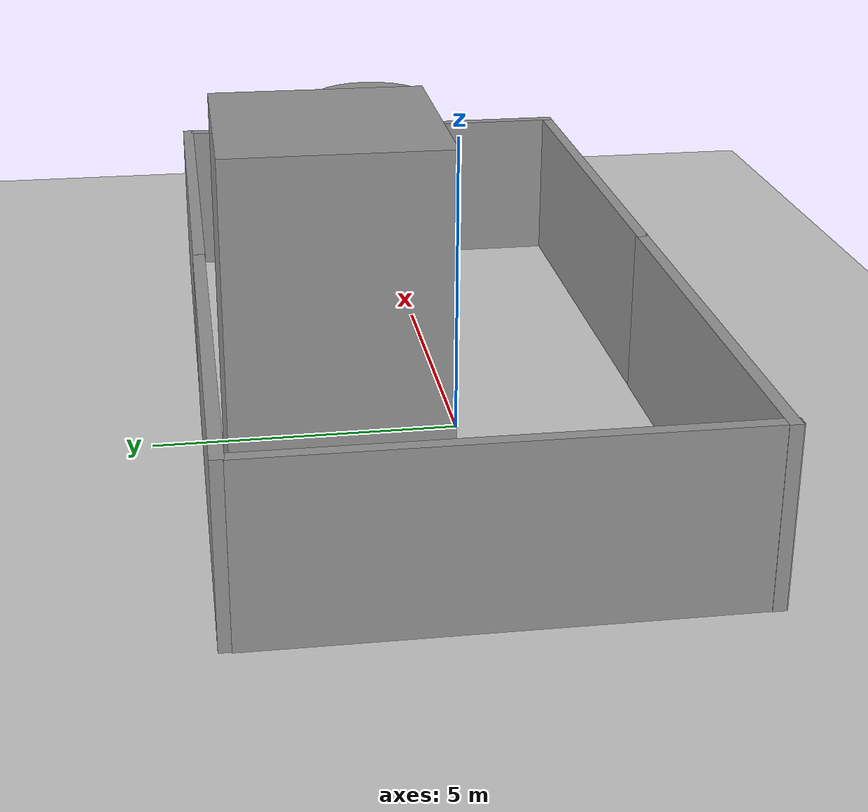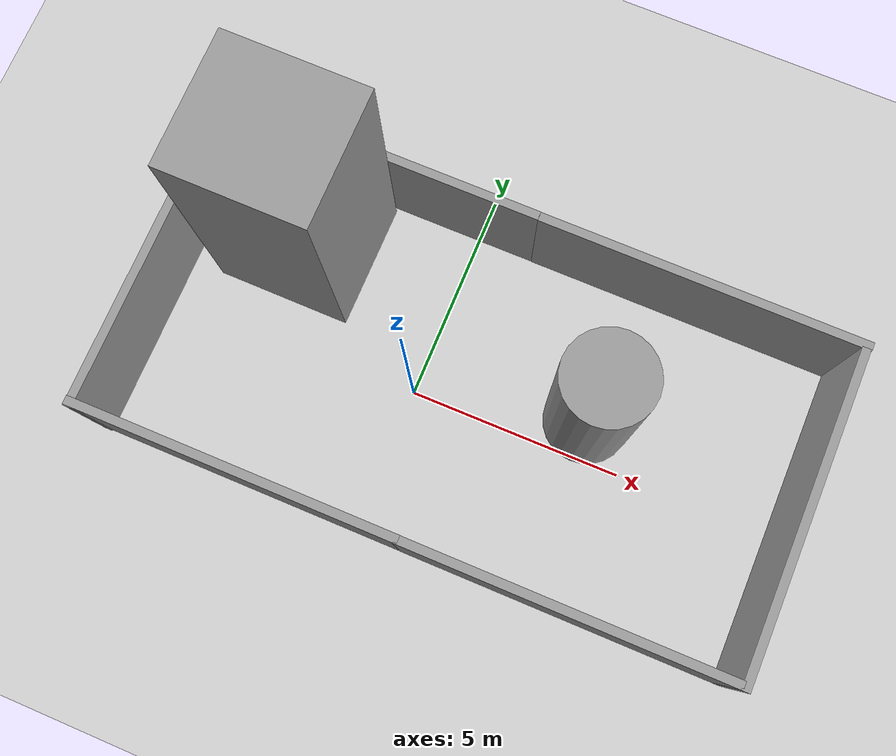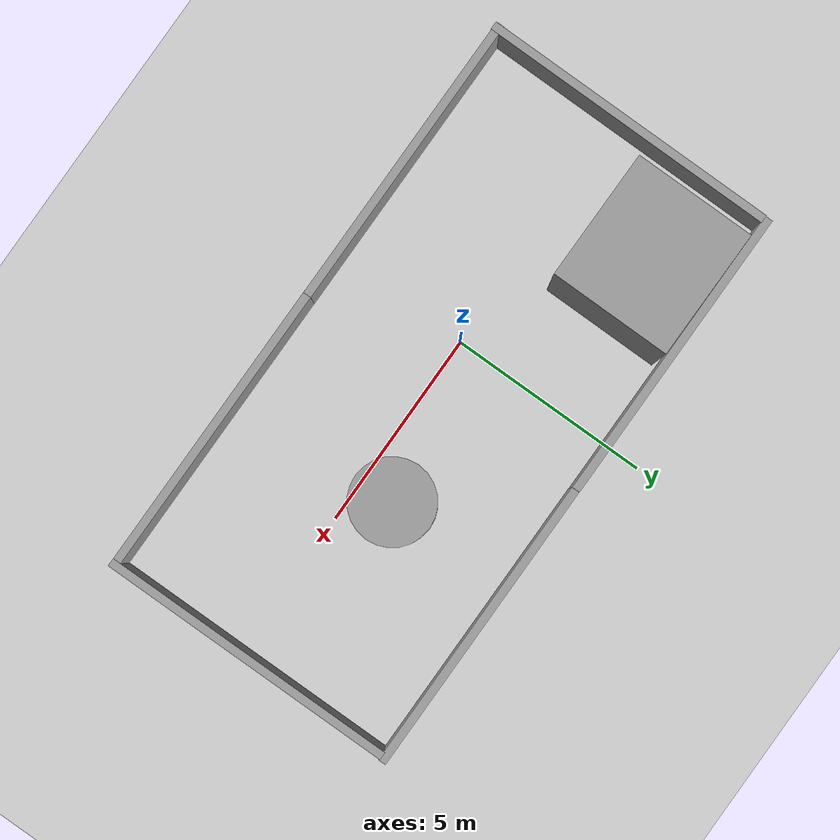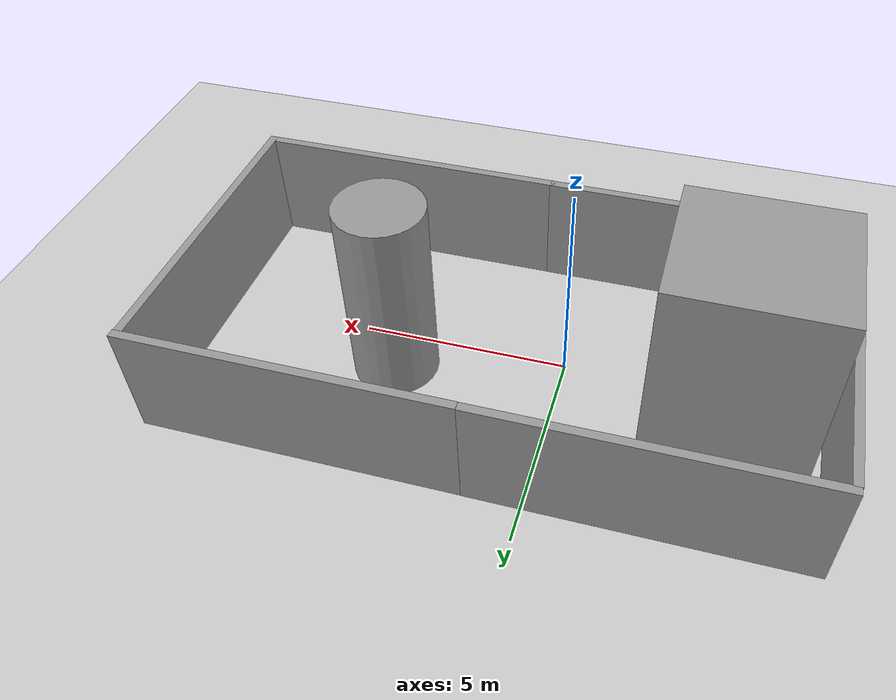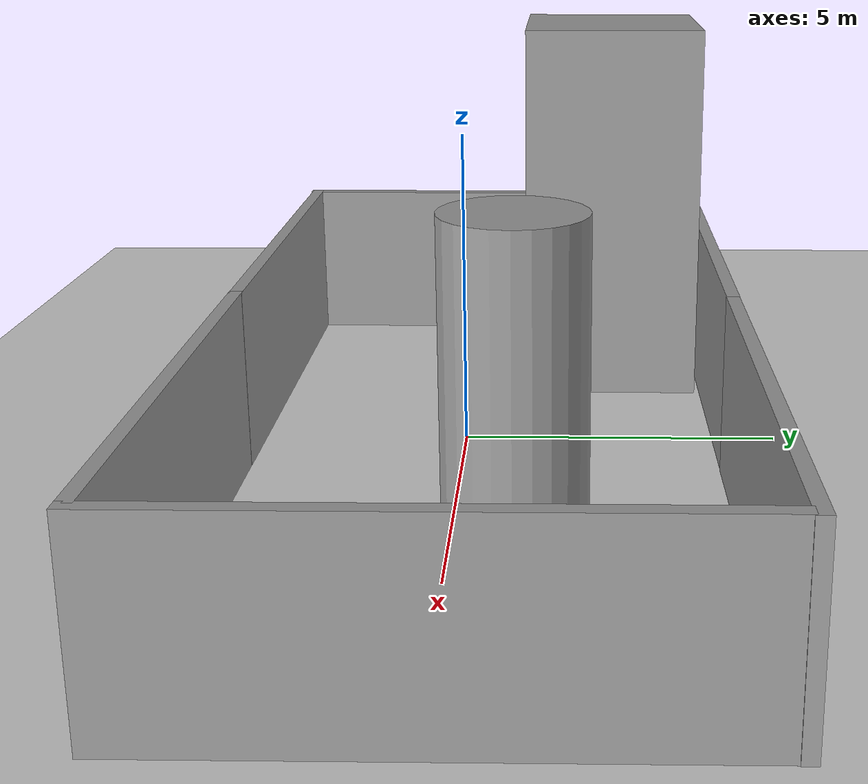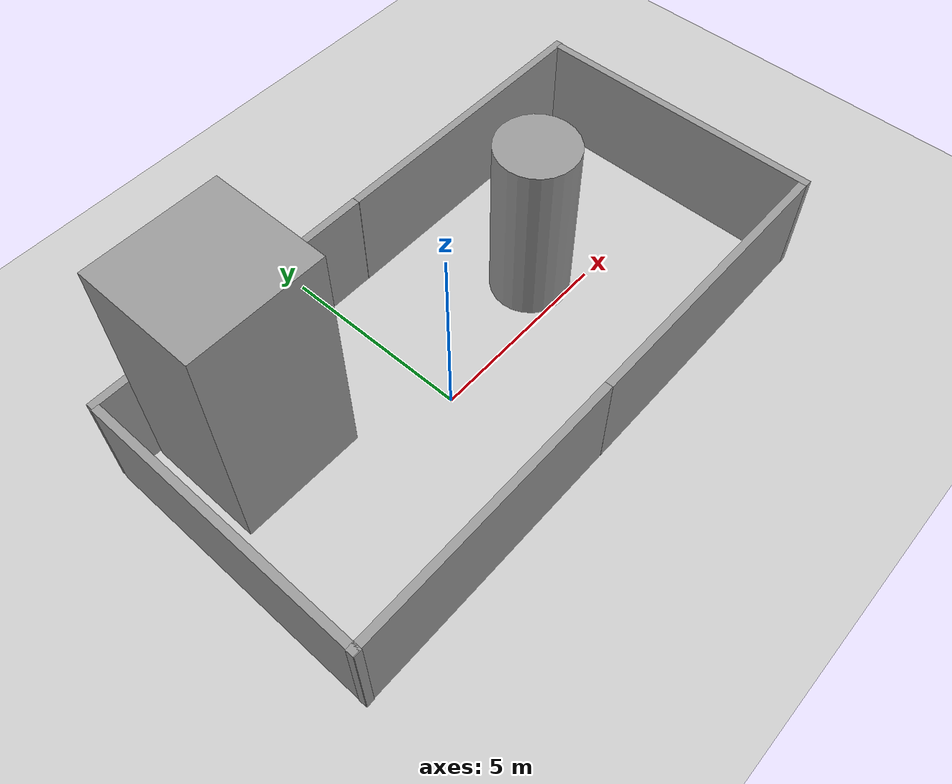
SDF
<sdf version="1.6">
 <world name="GrannyAnnie">
  <light name="sun" type="directional">
   <pose>0 0 10 0 -0 0</pose>
   <diffuse>0.8 0.8 0.8 1</diffuse>
   <specular>0.2 0.2 0.2 1</specular>
   <attenuation>
    <range>1000</range>
    <constant>0.9</constant>
    <linear>0.01</linear>
    <quadratic>0.001</quadratic>
   </attenuation>
   <direction>-0.5 0.1 -0.9</direction>
  </light>
  <model name="ground_plane">
   <static>1</static>
   <link name="link">
    <collision name="collision">
     <geometry><plane><normal>0 0 1</normal><size>100 100</size></plane></geometry>
     <surface><friction><ode><mu>100</mu><mu2>50</mu2></ode></friction></surface>
    </collision>
    <visual name="visual">
     <cast_shadows>0</cast_shadows>
     <geometry><plane><normal>0 0 1</normal><size>100 100</size></plane></geometry>
     <material>
      <script><uri>file://media/materials/scripts/gazebo.material</uri><name>Gazebo/Grey</name></script>
     </material>
    </visual>
    <velocity_decay><linear>0</linear><angular>0</angular></velocity_decay>
   </link>
  </model>
  <physics name="default_physics" default="0" type="ode">
   <max_step_size>0.01</max_step_size>
   <real_time_factor>1</real_time_factor>
   <real_time_update_rate>100</real_time_update_rate>
  </physics>
  <scene><ambient>0.4 0.4 0.4 1</ambient><background>0.7 0.7 0.7 1</background><shadows>1</shadows></scene>
  <spherical_coordinates>
   <surface_model>EARTH_WGS84</surface_model>
   <latitude_deg>0</latitude_deg>
   <longitude_deg>0</longitude_deg>
   <elevation>0</elevation>
   <heading_deg>0</heading_deg>
  </spherical_coordinates>
  <model name="grey_wall_0">
   <static>1</static>
   <link name="link">
    <pose>0 0 1.4 0 -0 0</pose>
    <collision name="collision"><geometry><box><size>7.5 0.2 2.8</size></box></geometry></collision>
    <visual name="visual">
     <cast_shadows>0</cast_shadows>
     <geometry><box><size>7.5 0.2 2.8</size></box></geometry>
     <material>
      <script>
       <uri>model://grey_wall/materials/scripts</uri>
       <uri>model://grey_wall/materials/textures</uri>
       <name>vrc/grey_wall</name>
      </script>
     </material>
    </visual>
    <velocity_decay><linear>0</linear><angular>0</angular></velocity_decay>
   </link>
   <pose>-6.1361 0.261075 0 0 0 -1.57522</pose>
  </model>
  <model name="grey_wall_1">
   <static>1</static>
   <link name="link">
    <pose>0 0 1.4 0 -0 0</pose>
    <collision name="collision"><geometry><box><size>7.5 0.2 2.8</size></box></geometry></collision>
    <visual name="visual">
     <cast_shadows>0</cast_shadows>
     <geometry><box><size>7.5 0.2 2.8</size></box></geometry>
     <material>
      <script>
       <uri>model://grey_wall/materials/scripts</uri>
       <uri>model://grey_wall/materials/textures</uri>
       <name>vrc/grey_wall</name>
      </script>
     </material>
    </visual>
    <velocity_decay><linear>0</linear><angular>0</angular></velocity_decay>
   </link>
   <pose>-2.44831 4.09492 0 0 -0 0</pose>
  </model>
  <model name="grey_wall_2">
   <static>1</static>
   <link name="link">
    <pose>0 0 1.4 0 -0 0</pose>
    <collision name="collision"><geometry><box><size>7.5 0.2 2.8</size></box></geometry></collision>
    <visual name="visual">
     <cast_shadows>0</cast_shadows>
     <geometry><box><size>7.5 0.2 2.8</size></box></geometry>
     <material>
      <script>
       <uri>model://grey_wall/materials/scripts</uri>
       <uri>model://grey_wall/materials/textures</uri>
       <name>vrc/grey_wall</name>
      </script>
     </material>
    </visual>
    <velocity_decay><linear>0</linear><angular>0</angular></velocity_decay>
   </link>
   <pose>-2.51059 -3.37113 0 0 -0 0</pose>
  </model>
  <model name="grey_wall_4">
   <static>1</static>
   <link name="link">
    <pose>0 0 1.4 0 -0 0</pose>
    <collision name="collision"><geometry><box><size>7.5 0.2 2.8</size></box></geometry></collision>
    <visual name="visual">
     <cast_shadows>0</cast_shadows>
     <geometry><box><size>7.5 0.2 2.8</size></box></geometry>
     <material>
      <script>
       <uri>model://grey_wall/materials/scripts</uri>
       <uri>model://grey_wall/materials/textures</uri>
       <name>vrc/grey_wall</name>
      </script>
     </material>
    </visual>
    <velocity_decay><linear>0</linear><angular>0</angular></velocity_decay>
   </link>
   <pose>8.68578 0.273967 0 0 0 -1.5708</pose>
  </model>
  <model name="grey_wall_5">
   <static>1</static>
   <link name="link">
    <pose>0 0 1.4 0 -0 0</pose>
    <collision name="collision"><geometry><box><size>7.5 0.2 2.8</size></box></geometry></collision>
    <visual name="visual">
     <cast_shadows>0</cast_shadows>
     <geometry><box><size>7.5 0.2 2.8</size></box></geometry>
     <material>
      <script>
       <uri>model://grey_wall/materials/scripts</uri>
       <uri>model://grey_wall/materials/textures</uri>
       <name>vrc/grey_wall</name>
      </script>
     </material>
    </visual>
    <velocity_decay><linear>0</linear><angular>0</angular></velocity_decay>
   </link>
   <pose>4.8856 -3.37484 0 0 -0 0</pose>
  </model>
  <gravity>0 0 -9.8</gravity>
  <magnetic_field>6e-06 2.3e-05 -4.2e-05</magnetic_field>
  <atmosphere type="adiabatic"/>
  <model name="unit_box_0">
   <pose>-3.72945 2.42053 3.19527 -8.3e-05 1.8e-05 -0.00459</pose>
   <link name="link">
    <inertial>
     <mass>1</mass>
     <inertia>
      <ixx>0.166667</ixx>
      <ixy>0</ixy>
      <ixz>0</ixz>
      <iyy>0.166667</iyy>
      <iyz>0</iyz>
      <izz>0.166667</izz>
     </inertia>
    </inertial>
    <collision name="collision"><geometry><box><size>3.17856 2.99004 6.3905</size></box></geometry></collision>
    <visual name="visual">
     <geometry><box><size>3.17856 2.99004 6.3905</size></box></geometry>
     <material>
      <script><name>Gazebo/Grey</name><uri>file://media/materials/scripts/gazebo.material</uri></script>
     </material>
    </visual>
   </link>
  </model>
  <model name="unit_cylinder_0">
   <pose>3.91712 0.916256 2.33667 6.9e-05 1.5e-05 -0.002161</pose>
   <link name="link">
    <inertial>
     <mass>1</mass>
     <inertia><ixx>0.145833</ixx><ixy>0</ixy><ixz>0</ixz><iyy>0.145833</iyy><iyz>0</iyz><izz>0.125</izz></inertia>
    </inertial>
    <collision name="collision">
     <geometry><cylinder><radius>1.00839</radius><length>4.67509</length></cylinder></geometry>
    </collision>
    <visual name="visual">
     <geometry><cylinder><radius>1.00839</radius><length>4.67509</length></cylinder></geometry>
     <material>
      <script><name>Gazebo/Grey</name><uri>file://media/materials/scripts/gazebo.material</uri></script>
     </material>
    </visual>
   </link>
  </model>
  <model name="grey_wall_1_clone">
   <static>1</static>
   <link name="link">
    <pose>0 0 1.4 0 -0 0</pose>
    <collision name="collision"><geometry><box><size>7.5 0.2 2.8</size></box></geometry></collision>
    <visual name="visual">
     <cast_shadows>0</cast_shadows>
     <geometry><box><size>7.5 0.2 2.8</size></box></geometry>
     <material>
      <script>
       <uri>model://grey_wall/materials/scripts</uri>
       <uri>model://grey_wall/materials/textures</uri>
       <name>vrc/grey_wall</name>
      </script>
     </material>
    </visual>
    <velocity_decay><linear>0</linear><angular>0</angular></velocity_decay>
   </link>
   <pose>5.05457 4.08937 0 0 -0 0</pose>
  </model>
 </world>
</sdf>
